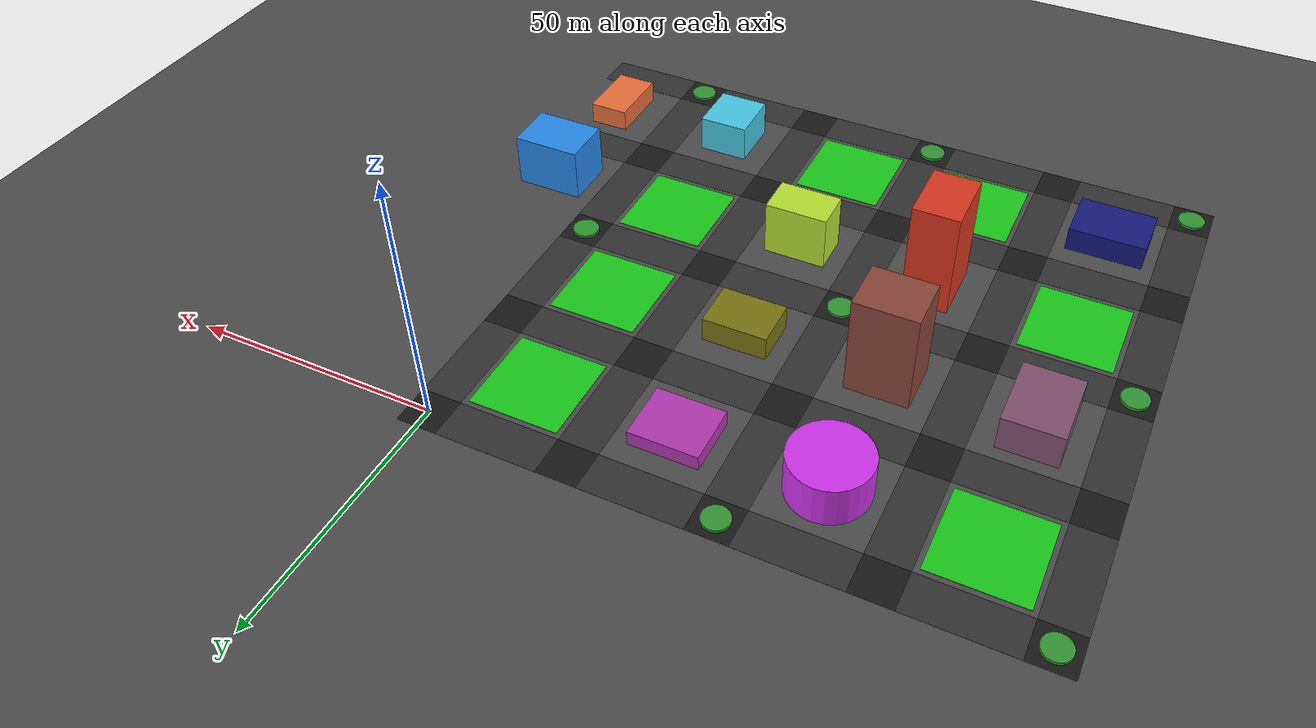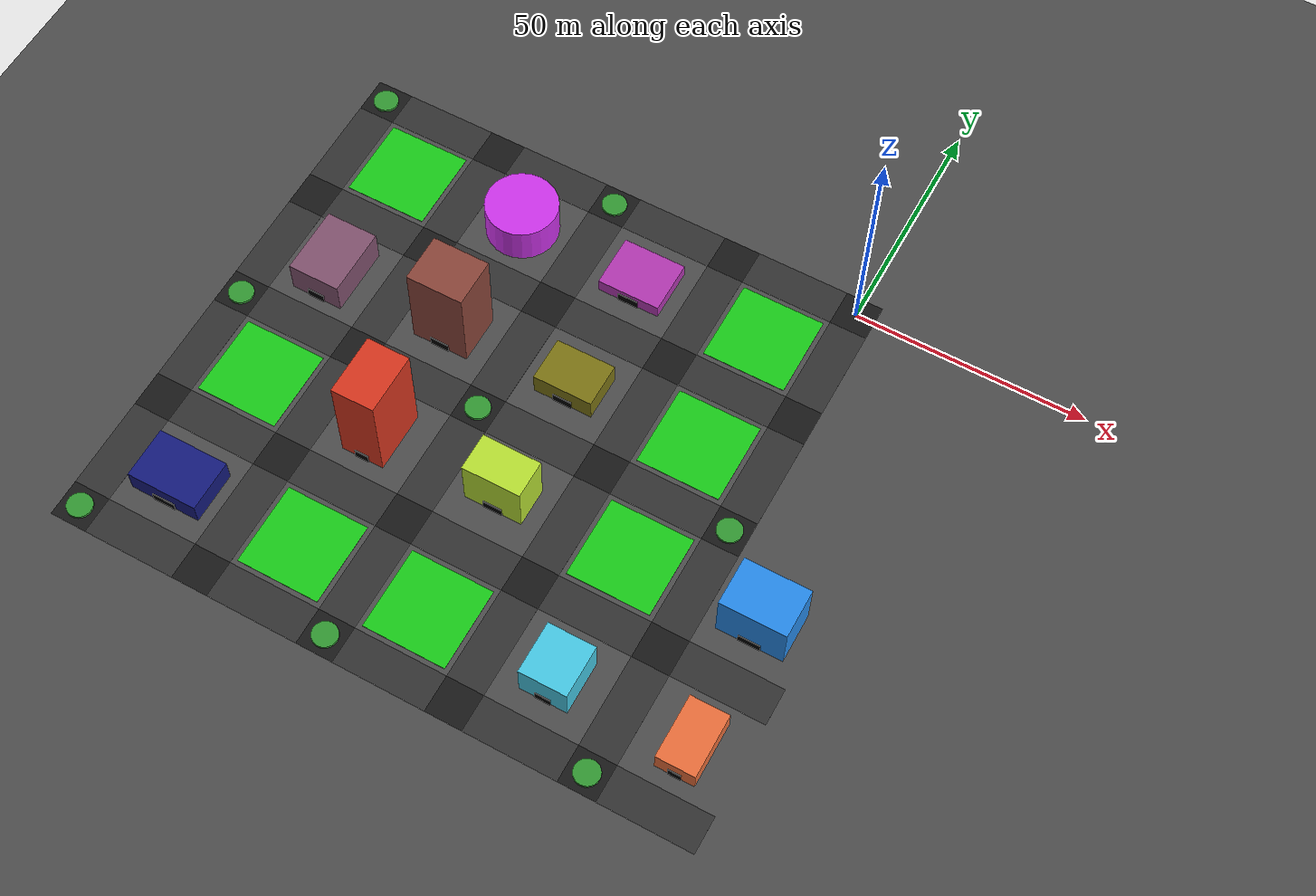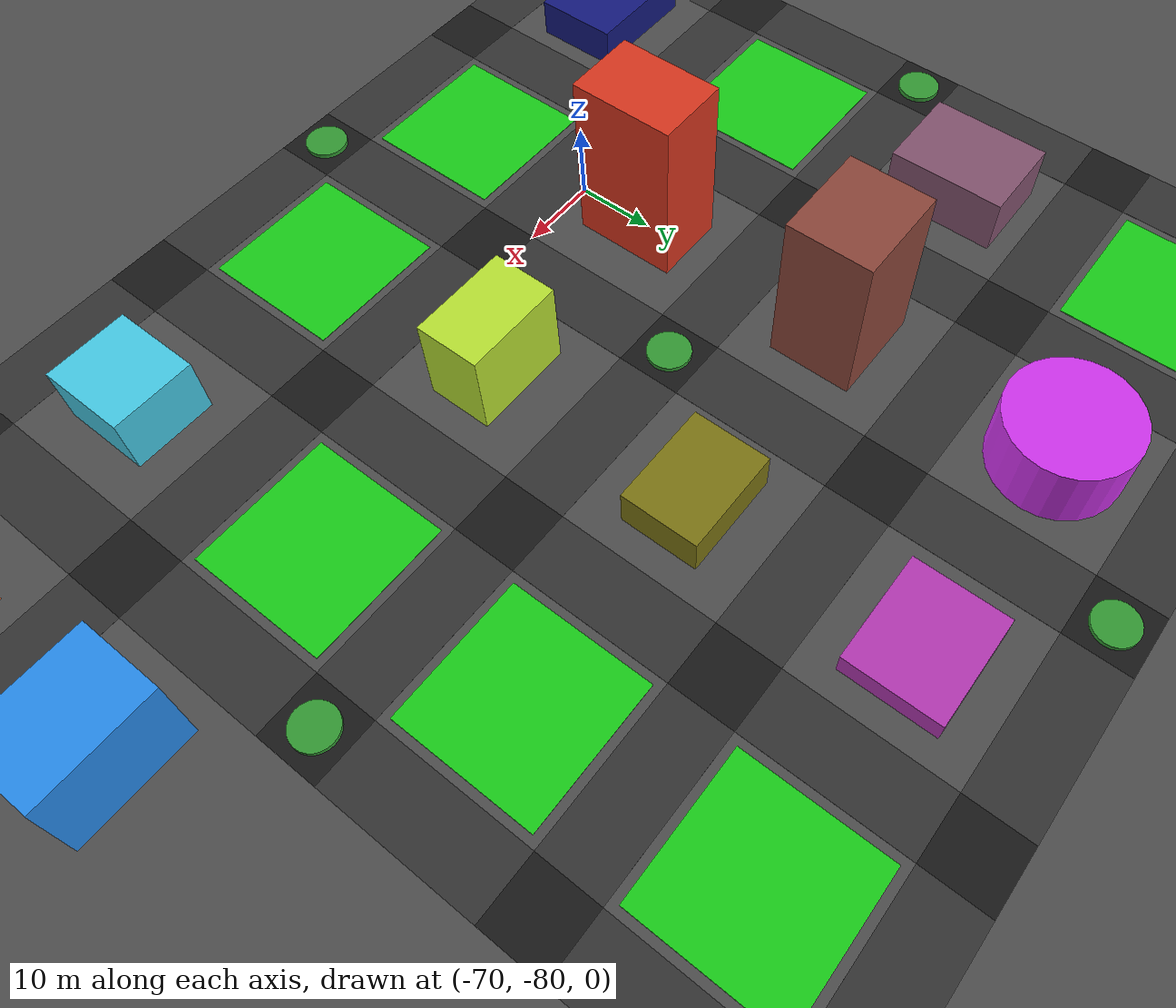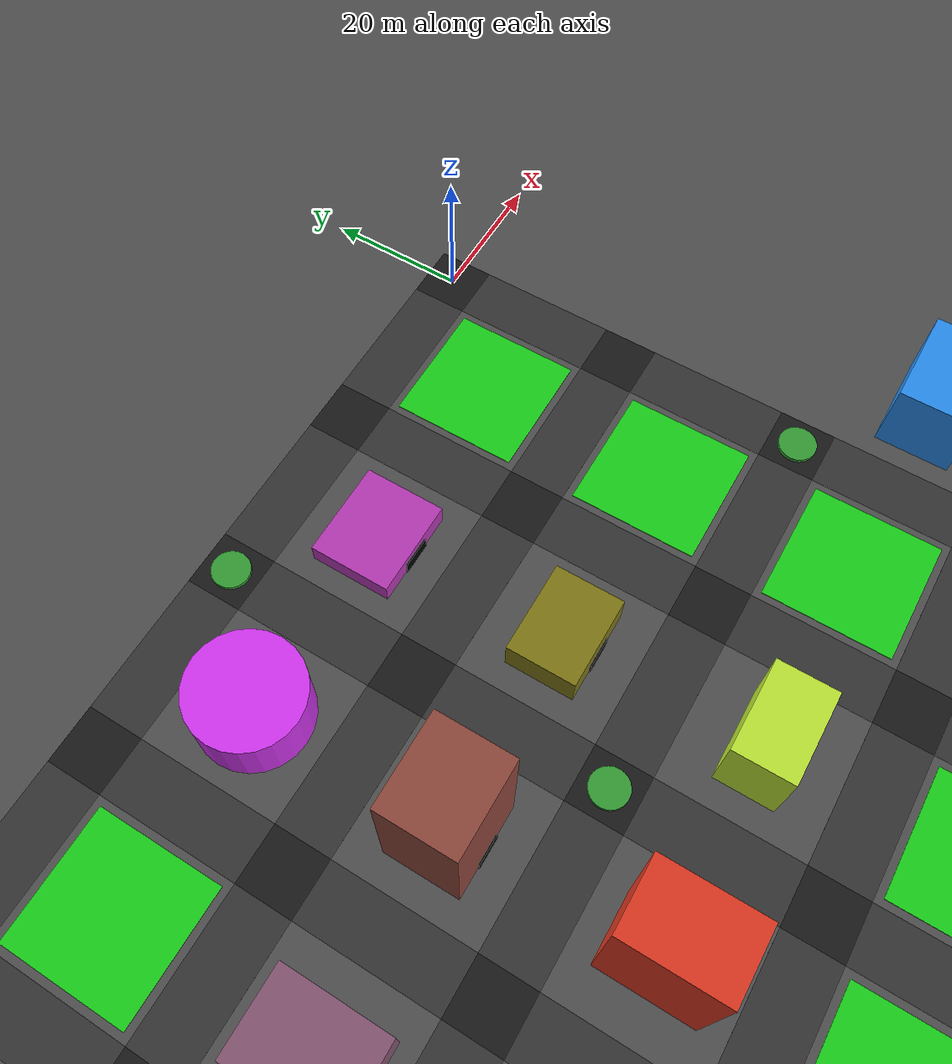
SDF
<sdf version="1.8">
 <world name="urban_city_rich">
  <model name="ground_plane">
   <static>true</static>
   <link name="link">
    <collision name="collision">
     <geometry><plane><normal>0 0 1</normal><size>200 200</size></plane></geometry>
     <surface><friction><ode><mu>100</mu><mu2>50</mu2></ode></friction></surface>
    </collision>
    <visual name="visual">
     <geometry><plane><normal>0 0 1</normal><size>200 200</size></plane></geometry>
     <material><ambient>0.3 0.3 0.3 1</ambient><diffuse>0.3 0.3 0.3 1</diffuse></material>
    </visual>
   </link>
  </model>
  <model name="road_inter_-4_-4">
   <static>true</static>
   <pose>-112.0 -112.0 0.01 0 0 0</pose>
   <link name="link">
    <visual name="vis">
     <geometry><box><size>8.0 8.0 0.02</size></box></geometry>
     <material><ambient>0.1 0.1 0.1 1</ambient><diffuse>0.1 0.1 0.1 1</diffuse></material>
    </visual>
   </link>
  </model>
  <model name="roundabout_-4_-4">
   <static>true</static>
   <pose>-112.0 -112.0 0.3 0 0 0</pose>
   <link name="link">
    <collision name="col">
     <geometry><cylinder><radius>2.6666666666666665</radius><length>0.6</length></cylinder></geometry>
    </collision>
    <visual name="vis">
     <geometry><cylinder><radius>2.6666666666666665</radius><length>0.6</length></cylinder></geometry>
     <material><ambient>0.2 0.6 0.2 1</ambient><diffuse>0.2 0.6 0.2 1</diffuse></material>
    </visual>
   </link>
  </model>
  <model name="road_h_-4_-4">
   <static>true</static>
   <pose>-98.0 -112.0 0.01 0 0 0</pose>
   <link name="link">
    <visual name="vis">
     <geometry><box><size>20.0 8.0 0.02</size></box></geometry>
     <material><ambient>0.2 0.2 0.2 1</ambient><diffuse>0.2 0.2 0.2 1</diffuse></material>
    </visual>
   </link>
  </model>
  <model name="road_v_-4_-4">
   <static>true</static>
   <pose>-112.0 -98.0 0.01 0 0 0</pose>
   <link name="link">
    <visual name="vis">
     <geometry><box><size>8.0 20.0 0.02</size></box></geometry>
     <material><ambient>0.2 0.2 0.2 1</ambient><diffuse>0.2 0.2 0.2 1</diffuse></material>
    </visual>
   </link>
  </model>
  <model name="bldg_0">
   <static>true</static>
   <pose>-98.0 -98.0 2.5235670317674987 0 0 0</pose>
   <link name="link">
    <collision name="col">
     <geometry><box><size>15.342661748203877 11.08600410563863 5.0471340635349975</size></box></geometry>
    </collision>
    <visual name="vis">
     <geometry><box><size>15.342661748203877 11.08600410563863 5.0471340635349975</size></box></geometry>
     <material>
      <ambient>0.07891768210494154 0.100371998829073 0.49105680813120545 1</ambient>
      <diffuse>0.07891768210494154 0.100371998829073 0.49105680813120545 1</diffuse>
     </material>
    </visual>
   </link>
  </model>
  <model name="door_0">
   <static>true</static>
   <pose>-98.0 -103.64300205281931 1.0 0 0 0</pose>
   <link name="link">
    <visual name="vis">
     <geometry><box><size>5.114220582734625 0.2 2.0</size></box></geometry>
     <material><ambient>0 0 0 1</ambient><diffuse>0 0 0 1</diffuse></material>
    </visual>
   </link>
  </model>
  <model name="road_inter_-4_-3">
   <static>true</static>
   <pose>-112.0 -84.0 0.01 0 0 0</pose>
   <link name="link">
    <visual name="vis">
     <geometry><box><size>8.0 8.0 0.02</size></box></geometry>
     <material><ambient>0.1 0.1 0.1 1</ambient><diffuse>0.1 0.1 0.1 1</diffuse></material>
    </visual>
   </link>
  </model>
  <model name="road_h_-4_-3">
   <static>true</static>
   <pose>-98.0 -84.0 0.01 0 0 0</pose>
   <link name="link">
    <visual name="vis">
     <geometry><box><size>20.0 8.0 0.02</size></box></geometry>
     <material><ambient>0.2 0.2 0.2 1</ambient><diffuse>0.2 0.2 0.2 1</diffuse></material>
    </visual>
   </link>
  </model>
  <model name="road_v_-4_-3">
   <static>true</static>
   <pose>-112.0 -70.0 0.01 0 0 0</pose>
   <link name="link">
    <visual name="vis">
     <geometry><box><size>8.0 20.0 0.02</size></box></geometry>
     <material><ambient>0.2 0.2 0.2 1</ambient><diffuse>0.2 0.2 0.2 1</diffuse></material>
    </visual>
   </link>
  </model>
  <model name="park_-4_-3">
   <static>true</static>
   <pose>-98.0 -70.0 0.05 0 0 0</pose>
   <link name="link">
    <visual name="vis">
     <geometry><box><size>18.0 18.0 0.1</size></box></geometry>
     <material><ambient>0.1 0.8 0.1 1</ambient><diffuse>0.1 0.8 0.1 1</diffuse></material>
    </visual>
   </link>
  </model>
  <model name="road_inter_-4_-2">
   <static>true</static>
   <pose>-112.0 -56.0 0.01 0 0 0</pose>
   <link name="link">
    <visual name="vis">
     <geometry><box><size>8.0 8.0 0.02</size></box></geometry>
     <material><ambient>0.1 0.1 0.1 1</ambient><diffuse>0.1 0.1 0.1 1</diffuse></material>
    </visual>
   </link>
  </model>
  <model name="roundabout_-4_-2">
   <static>true</static>
   <pose>-112.0 -56.0 0.3 0 0 0</pose>
   <link name="link">
    <collision name="col">
     <geometry><cylinder><radius>2.6666666666666665</radius><length>0.6</length></cylinder></geometry>
    </collision>
    <visual name="vis">
     <geometry><cylinder><radius>2.6666666666666665</radius><length>0.6</length></cylinder></geometry>
     <material><ambient>0.2 0.6 0.2 1</ambient><diffuse>0.2 0.6 0.2 1</diffuse></material>
    </visual>
   </link>
  </model>
  <model name="road_h_-4_-2">
   <static>true</static>
   <pose>-98.0 -56.0 0.01 0 0 0</pose>
   <link name="link">
    <visual name="vis">
     <geometry><box><size>20.0 8.0 0.02</size></box></geometry>
     <material><ambient>0.2 0.2 0.2 1</ambient><diffuse>0.2 0.2 0.2 1</diffuse></material>
    </visual>
   </link>
  </model>
  <model name="road_v_-4_-2">
   <static>true</static>
   <pose>-112.0 -42.0 0.01 0 0 0</pose>
   <link name="link">
    <visual name="vis">
     <geometry><box><size>8.0 20.0 0.02</size></box></geometry>
     <material><ambient>0.2 0.2 0.2 1</ambient><diffuse>0.2 0.2 0.2 1</diffuse></material>
    </visual>
   </link>
  </model>
  <model name="bldg_1">
   <static>true</static>
   <pose>-98.0 -42.0 3.6376901776272232 0 0 0</pose>
   <link name="link">
    <collision name="col">
     <geometry><box><size>11.35202361768915 14.776690094084369 7.2753803552544465</size></box></geometry>
    </collision>
    <visual name="vis">
     <geometry><box><size>11.35202361768915 14.776690094084369 7.2753803552544465</size></box></geometry>
     <material>
      <ambient>0.5092049025601565 0.32316817157173483 0.43274199991856177 1</ambient>
      <diffuse>0.5092049025601565 0.32316817157173483 0.43274199991856177 1</diffuse>
     </material>
    </visual>
   </link>
  </model>
  <model name="door_1">
   <static>true</static>
   <pose>-98.0 -49.48834504704219 1.0 0 0 0</pose>
   <link name="link">
    <visual name="vis">
     <geometry><box><size>3.78400787256305 0.2 2.0</size></box></geometry>
     <material><ambient>0 0 0 1</ambient><diffuse>0 0 0 1</diffuse></material>
    </visual>
   </link>
  </model>
  <model name="road_inter_-4_-1">
   <static>true</static>
   <pose>-112.0 -28.0 0.01 0 0 0</pose>
   <link name="link">
    <visual name="vis">
     <geometry><box><size>8.0 8.0 0.02</size></box></geometry>
     <material><ambient>0.1 0.1 0.1 1</ambient><diffuse>0.1 0.1 0.1 1</diffuse></material>
    </visual>
   </link>
  </model>
  <model name="road_h_-4_-1">
   <static>true</static>
   <pose>-98.0 -28.0 0.01 0 0 0</pose>
   <link name="link">
    <visual name="vis">
     <geometry><box><size>20.0 8.0 0.02</size></box></geometry>
     <material><ambient>0.2 0.2 0.2 1</ambient><diffuse>0.2 0.2 0.2 1</diffuse></material>
    </visual>
   </link>
  </model>
  <model name="road_v_-4_-1">
   <static>true</static>
   <pose>-112.0 -14.0 0.01 0 0 0</pose>
   <link name="link">
    <visual name="vis">
     <geometry><box><size>8.0 20.0 0.02</size></box></geometry>
     <material><ambient>0.2 0.2 0.2 1</ambient><diffuse>0.2 0.2 0.2 1</diffuse></material>
    </visual>
   </link>
  </model>
  <model name="park_-4_-1">
   <static>true</static>
   <pose>-98.0 -14.0 0.05 0 0 0</pose>
   <link name="link">
    <visual name="vis">
     <geometry><box><size>18.0 18.0 0.1</size></box></geometry>
     <material><ambient>0.1 0.8 0.1 1</ambient><diffuse>0.1 0.8 0.1 1</diffuse></material>
    </visual>
   </link>
  </model>
  <model name="road_inter_-4_0">
   <static>true</static>
   <pose>-112.0 0.0 0.01 0 0 0</pose>
   <link name="link">
    <visual name="vis">
     <geometry><box><size>8.0 8.0 0.02</size></box></geometry>
     <material><ambient>0.1 0.1 0.1 1</ambient><diffuse>0.1 0.1 0.1 1</diffuse></material>
    </visual>
   </link>
  </model>
  <model name="roundabout_-4_0">
   <static>true</static>
   <pose>-112.0 0.0 0.3 0 0 0</pose>
   <link name="link">
    <collision name="col">
     <geometry><cylinder><radius>2.6666666666666665</radius><length>0.6</length></cylinder></geometry>
    </collision>
    <visual name="vis">
     <geometry><cylinder><radius>2.6666666666666665</radius><length>0.6</length></cylinder></geometry>
     <material><ambient>0.2 0.6 0.2 1</ambient><diffuse>0.2 0.6 0.2 1</diffuse></material>
    </visual>
   </link>
  </model>
  <model name="road_h_-4_0">
   <static>true</static>
   <pose>-98.0 0.0 0.01 0 0 0</pose>
   <link name="link">
    <visual name="vis">
     <geometry><box><size>20.0 8.0 0.02</size></box></geometry>
     <material><ambient>0.2 0.2 0.2 1</ambient><diffuse>0.2 0.2 0.2 1</diffuse></material>
    </visual>
   </link>
  </model>
  <model name="road_inter_-3_-4">
   <static>true</static>
   <pose>-84.0 -112.0 0.01 0 0 0</pose>
   <link name="link">
    <visual name="vis">
     <geometry><box><size>8.0 8.0 0.02</size></box></geometry>
     <material><ambient>0.1 0.1 0.1 1</ambient><diffuse>0.1 0.1 0.1 1</diffuse></material>
    </visual>
   </link>
  </model>
  <model name="road_h_-3_-4">
   <static>true</static>
   <pose>-70.0 -112.0 0.01 0 0 0</pose>
   <link name="link">
    <visual name="vis">
     <geometry><box><size>20.0 8.0 0.02</size></box></geometry>
     <material><ambient>0.2 0.2 0.2 1</ambient><diffuse>0.2 0.2 0.2 1</diffuse></material>
    </visual>
   </link>
  </model>
  <model name="road_v_-3_-4">
   <static>true</static>
   <pose>-84.0 -98.0 0.01 0 0 0</pose>
   <link name="link">
    <visual name="vis">
     <geometry><box><size>8.0 20.0 0.02</size></box></geometry>
     <material><ambient>0.2 0.2 0.2 1</ambient><diffuse>0.2 0.2 0.2 1</diffuse></material>
    </visual>
   </link>
  </model>
  <model name="park_-3_-4">
   <static>true</static>
   <pose>-70.0 -98.0 0.05 0 0 0</pose>
   <link name="link">
    <visual name="vis">
     <geometry><box><size>18.0 18.0 0.1</size></box></geometry>
     <material><ambient>0.1 0.8 0.1 1</ambient><diffuse>0.1 0.8 0.1 1</diffuse></material>
    </visual>
   </link>
  </model>
  <model name="road_inter_-3_-3">
   <static>true</static>
   <pose>-84.0 -84.0 0.01 0 0 0</pose>
   <link name="link">
    <visual name="vis">
     <geometry><box><size>8.0 8.0 0.02</size></box></geometry>
     <material><ambient>0.1 0.1 0.1 1</ambient><diffuse>0.1 0.1 0.1 1</diffuse></material>
    </visual>
   </link>
  </model>
  <model name="road_h_-3_-3">
   <static>true</static>
   <pose>-70.0 -84.0 0.01 0 0 0</pose>
   <link name="link">
    <visual name="vis">
     <geometry><box><size>20.0 8.0 0.02</size></box></geometry>
     <material><ambient>0.2 0.2 0.2 1</ambient><diffuse>0.2 0.2 0.2 1</diffuse></material>
    </visual>
   </link>
  </model>
  <model name="road_v_-3_-3">
   <static>true</static>
   <pose>-84.0 -70.0 0.01 0 0 0</pose>
   <link name="link">
    <visual name="vis">
     <geometry><box><size>8.0 20.0 0.02</size></box></geometry>
     <material><ambient>0.2 0.2 0.2 1</ambient><diffuse>0.2 0.2 0.2 1</diffuse></material>
    </visual>
   </link>
  </model>
  <model name="bldg_6">
   <static>true</static>
   <pose>-70.0 -70.0 11.145302864680088 0 0 0</pose>
   <link name="link">
    <collision name="col">
     <geometry><box><size>9.249776720305364 13.105119866609332 22.290605729360177</size></box></geometry>
    </collision>
    <visual name="vis">
     <geometry><box><size>9.249776720305364 13.105119866609332 22.290605729360177</size></box></geometry>
     <material>
      <ambient>0.8486679505580024 0.21356448876894685 0.12262370836348857 1</ambient>
      <diffuse>0.8486679505580024 0.21356448876894685 0.12262370836348857 1</diffuse>
     </material>
    </visual>
   </link>
  </model>
  <model name="door_6">
   <static>true</static>
   <pose>-70.0 -76.65255993330466 1.0 0 0 0</pose>
   <link name="link">
    <visual name="vis">
     <geometry><box><size>3.083258906768455 0.2 2.0</size></box></geometry>
     <material><ambient>0 0 0 1</ambient><diffuse>0 0 0 1</diffuse></material>
    </visual>
   </link>
  </model>
  <model name="road_inter_-3_-2">
   <static>true</static>
   <pose>-84.0 -56.0 0.01 0 0 0</pose>
   <link name="link">
    <visual name="vis">
     <geometry><box><size>8.0 8.0 0.02</size></box></geometry>
     <material><ambient>0.1 0.1 0.1 1</ambient><diffuse>0.1 0.1 0.1 1</diffuse></material>
    </visual>
   </link>
  </model>
  <model name="road_h_-3_-2">
   <static>true</static>
   <pose>-70.0 -56.0 0.01 0 0 0</pose>
   <link name="link">
    <visual name="vis">
     <geometry><box><size>20.0 8.0 0.02</size></box></geometry>
     <material><ambient>0.2 0.2 0.2 1</ambient><diffuse>0.2 0.2 0.2 1</diffuse></material>
    </visual>
   </link>
  </model>
  <model name="road_v_-3_-2">
   <static>true</static>
   <pose>-84.0 -42.0 0.01 0 0 0</pose>
   <link name="link">
    <visual name="vis">
     <geometry><box><size>8.0 20.0 0.02</size></box></geometry>
     <material><ambient>0.2 0.2 0.2 1</ambient><diffuse>0.2 0.2 0.2 1</diffuse></material>
    </visual>
   </link>
  </model>
  <model name="bldg_7">
   <static>true</static>
   <pose>-70.0 -42.0 10.33584450808003 0 0 0</pose>
   <link name="link">
    <collision name="col">
     <geometry><box><size>12.347266834379655 10.477315987206403 20.67168901616006</size></box></geometry>
    </collision>
    <visual name="vis">
     <geometry><box><size>12.347266834379655 10.477315987206403 20.67168901616006</size></box></geometry>
     <material>
      <ambient>0.5452253943904294 0.27323704681909844 0.22826414803682094 1</ambient>
      <diffuse>0.5452253943904294 0.27323704681909844 0.22826414803682094 1</diffuse>
     </material>
    </visual>
   </link>
  </model>
  <model name="door_7">
   <static>true</static>
   <pose>-70.0 -47.3386579936032 1.0 0 0 0</pose>
   <link name="link">
    <visual name="vis">
     <geometry><box><size>4.1157556114598846 0.2 2.0</size></box></geometry>
     <material><ambient>0 0 0 1</ambient><diffuse>0 0 0 1</diffuse></material>
    </visual>
   </link>
  </model>
  <model name="road_inter_-3_-1">
   <static>true</static>
   <pose>-84.0 -28.0 0.01 0 0 0</pose>
   <link name="link">
    <visual name="vis">
     <geometry><box><size>8.0 8.0 0.02</size></box></geometry>
     <material><ambient>0.1 0.1 0.1 1</ambient><diffuse>0.1 0.1 0.1 1</diffuse></material>
    </visual>
   </link>
  </model>
  <model name="road_h_-3_-1">
   <static>true</static>
   <pose>-70.0 -28.0 0.01 0 0 0</pose>
   <link name="link">
    <visual name="vis">
     <geometry><box><size>20.0 8.0 0.02</size></box></geometry>
     <material><ambient>0.2 0.2 0.2 1</ambient><diffuse>0.2 0.2 0.2 1</diffuse></material>
    </visual>
   </link>
  </model>
  <model name="road_v_-3_-1">
   <static>true</static>
   <pose>-84.0 -14.0 0.01 0 0 0</pose>
   <link name="link">
    <visual name="vis">
     <geometry><box><size>8.0 20.0 0.02</size></box></geometry>
     <material><ambient>0.2 0.2 0.2 1</ambient><diffuse>0.2 0.2 0.2 1</diffuse></material>
    </visual>
   </link>
  </model>
  <model name="bldg_8">
   <static>true</static>
   <pose>-70.0 -14.0 4.16093976846412 0 0 0</pose>
   <link name="link">
    <collision name="col">
     <geometry><cylinder><radius>7.724120574102244</radius><length>8.32187953692824</length></cylinder></geometry>
    </collision>
    <visual name="vis">
     <geometry><cylinder><radius>7.724120574102244</radius><length>8.32187953692824</length></cylinder></geometry>
     <material>
      <ambient>0.8154843360258764 0.20335821501575657 0.9309179945168319 1</ambient>
      <diffuse>0.8154843360258764 0.20335821501575657 0.9309179945168319 1</diffuse>
     </material>
    </visual>
   </link>
  </model>
  <model name="door_8">
   <static>true</static>
   <pose>-70.0 -19.347105833627378 1.0 0 0 0</pose>
   <link name="link">
    <visual name="vis">
     <geometry><box><size>5.149413716068163 0.2 2.0</size></box></geometry>
     <material><ambient>0 0 0 1</ambient><diffuse>0 0 0 1</diffuse></material>
    </visual>
   </link>
  </model>
  <model name="road_inter_-3_0">
   <static>true</static>
   <pose>-84.0 0.0 0.01 0 0 0</pose>
   <link name="link">
    <visual name="vis">
     <geometry><box><size>8.0 8.0 0.02</size></box></geometry>
     <material><ambient>0.1 0.1 0.1 1</ambient><diffuse>0.1 0.1 0.1 1</diffuse></material>
    </visual>
   </link>
  </model>
  <model name="road_h_-3_0">
   <static>true</static>
   <pose>-70.0 0.0 0.01 0 0 0</pose>
   <link name="link">
    <visual name="vis">
     <geometry><box><size>20.0 8.0 0.02</size></box></geometry>
     <material><ambient>0.2 0.2 0.2 1</ambient><diffuse>0.2 0.2 0.2 1</diffuse></material>
    </visual>
   </link>
  </model>
  <model name="road_inter_-2_-4">
   <static>true</static>
   <pose>-56.0 -112.0 0.01 0 0 0</pose>
   <link name="link">
    <visual name="vis">
     <geometry><box><size>8.0 8.0 0.02</size></box></geometry>
     <material><ambient>0.1 0.1 0.1 1</ambient><diffuse>0.1 0.1 0.1 1</diffuse></material>
    </visual>
   </link>
  </model>
  <model name="roundabout_-2_-4">
   <static>true</static>
   <pose>-56.0 -112.0 0.3 0 0 0</pose>
   <link name="link">
    <collision name="col">
     <geometry><cylinder><radius>2.6666666666666665</radius><length>0.6</length></cylinder></geometry>
    </collision>
    <visual name="vis">
     <geometry><cylinder><radius>2.6666666666666665</radius><length>0.6</length></cylinder></geometry>
     <material><ambient>0.2 0.6 0.2 1</ambient><diffuse>0.2 0.6 0.2 1</diffuse></material>
    </visual>
   </link>
  </model>
  <model name="road_h_-2_-4">
   <static>true</static>
   <pose>-42.0 -112.0 0.01 0 0 0</pose>
   <link name="link">
    <visual name="vis">
     <geometry><box><size>20.0 8.0 0.02</size></box></geometry>
     <material><ambient>0.2 0.2 0.2 1</ambient><diffuse>0.2 0.2 0.2 1</diffuse></material>
    </visual>
   </link>
  </model>
  <model name="road_v_-2_-4">
   <static>true</static>
   <pose>-56.0 -98.0 0.01 0 0 0</pose>
   <link name="link">
    <visual name="vis">
     <geometry><box><size>8.0 20.0 0.02</size></box></geometry>
     <material><ambient>0.2 0.2 0.2 1</ambient><diffuse>0.2 0.2 0.2 1</diffuse></material>
    </visual>
   </link>
  </model>
  <model name="park_-2_-4">
   <static>true</static>
   <pose>-42.0 -98.0 0.05 0 0 0</pose>
   <link name="link">
    <visual name="vis">
     <geometry><box><size>18.0 18.0 0.1</size></box></geometry>
     <material><ambient>0.1 0.8 0.1 1</ambient><diffuse>0.1 0.8 0.1 1</diffuse></material>
    </visual>
   </link>
  </model>
  <model name="road_inter_-2_-3">
   <static>true</static>
   <pose>-56.0 -84.0 0.01 0 0 0</pose>
   <link name="link">
    <visual name="vis">
     <geometry><box><size>8.0 8.0 0.02</size></box></geometry>
     <material><ambient>0.1 0.1 0.1 1</ambient><diffuse>0.1 0.1 0.1 1</diffuse></material>
    </visual>
   </link>
  </model>
  <model name="road_h_-2_-3">
   <static>true</static>
   <pose>-42.0 -84.0 0.01 0 0 0</pose>
   <link name="link">
    <visual name="vis">
     <geometry><box><size>20.0 8.0 0.02</size></box></geometry>
     <material><ambient>0.2 0.2 0.2 1</ambient><diffuse>0.2 0.2 0.2 1</diffuse></material>
    </visual>
   </link>
  </model>
  <model name="road_v_-2_-3">
   <static>true</static>
   <pose>-56.0 -70.0 0.01 0 0 0</pose>
   <link name="link">
    <visual name="vis">
     <geometry><box><size>8.0 20.0 0.02</size></box></geometry>
     <material><ambient>0.2 0.2 0.2 1</ambient><diffuse>0.2 0.2 0.2 1</diffuse></material>
    </visual>
   </link>
  </model>
  <model name="bldg_12">
   <static>true</static>
   <pose>-42.0 -70.0 5.734184694096465 0 0 0</pose>
   <link name="link">
    <collision name="col">
     <geometry><box><size>12.679352574609744 8.170057510644643 11.46836938819293</size></box></geometry>
    </collision>
    <visual name="vis">
     <geometry><box><size>12.679352574609744 8.170057510644643 11.46836938819293</size></box></geometry>
     <material>
      <ambient>0.724466864392436 0.8841149506035106 0.2005147474207506 1</ambient>
      <diffuse>0.724466864392436 0.8841149506035106 0.2005147474207506 1</diffuse>
     </material>
    </visual>
   </link>
  </model>
  <model name="door_12">
   <static>true</static>
   <pose>-42.0 -74.18502875532232 1.0 0 0 0</pose>
   <link name="link">
    <visual name="vis">
     <geometry><box><size>4.226450858203248 0.2 2.0</size></box></geometry>
     <material><ambient>0 0 0 1</ambient><diffuse>0 0 0 1</diffuse></material>
    </visual>
   </link>
  </model>
  <model name="road_inter_-2_-2">
   <static>true</static>
   <pose>-56.0 -56.0 0.01 0 0 0</pose>
   <link name="link">
    <visual name="vis">
     <geometry><box><size>8.0 8.0 0.02</size></box></geometry>
     <material><ambient>0.1 0.1 0.1 1</ambient><diffuse>0.1 0.1 0.1 1</diffuse></material>
    </visual>
   </link>
  </model>
  <model name="roundabout_-2_-2">
   <static>true</static>
   <pose>-56.0 -56.0 0.3 0 0 0</pose>
   <link name="link">
    <collision name="col">
     <geometry><cylinder><radius>2.6666666666666665</radius><length>0.6</length></cylinder></geometry>
    </collision>
    <visual name="vis">
     <geometry><cylinder><radius>2.6666666666666665</radius><length>0.6</length></cylinder></geometry>
     <material><ambient>0.2 0.6 0.2 1</ambient><diffuse>0.2 0.6 0.2 1</diffuse></material>
    </visual>
   </link>
  </model>
  <model name="road_h_-2_-2">
   <static>true</static>
   <pose>-42.0 -56.0 0.01 0 0 0</pose>
   <link name="link">
    <visual name="vis">
     <geometry><box><size>20.0 8.0 0.02</size></box></geometry>
     <material><ambient>0.2 0.2 0.2 1</ambient><diffuse>0.2 0.2 0.2 1</diffuse></material>
    </visual>
   </link>
  </model>
  <model name="road_v_-2_-2">
   <static>true</static>
   <pose>-56.0 -42.0 0.01 0 0 0</pose>
   <link name="link">
    <visual name="vis">
     <geometry><box><size>8.0 20.0 0.02</size></box></geometry>
     <material><ambient>0.2 0.2 0.2 1</ambient><diffuse>0.2 0.2 0.2 1</diffuse></material>
    </visual>
   </link>
  </model>
  <model name="bldg_13">
   <static>true</static>
   <pose>-42.0 -42.0 2.522974517584019 0 0 0</pose>
   <link name="link">
    <collision name="col">
     <geometry><box><size>12.931677133729247 9.709780513660842 5.045949035168038</size></box></geometry>
    </collision>
    <visual name="vis">
     <geometry><box><size>12.931677133729247 9.709780513660842 5.045949035168038</size></box></geometry>
     <material>
      <ambient>0.48810979955961264 0.45837308282455147 0.07947602669510367 1</ambient>
      <diffuse>0.48810979955961264 0.45837308282455147 0.07947602669510367 1</diffuse>
     </material>
    </visual>
   </link>
  </model>
  <model name="door_13">
   <static>true</static>
   <pose>-42.0 -46.954890256830424 1.0 0 0 0</pose>
   <link name="link">
    <visual name="vis">
     <geometry><box><size>4.310559044576416 0.2 2.0</size></box></geometry>
     <material><ambient>0 0 0 1</ambient><diffuse>0 0 0 1</diffuse></material>
    </visual>
   </link>
  </model>
  <model name="road_inter_-2_-1">
   <static>true</static>
   <pose>-56.0 -28.0 0.01 0 0 0</pose>
   <link name="link">
    <visual name="vis">
     <geometry><box><size>8.0 8.0 0.02</size></box></geometry>
     <material><ambient>0.1 0.1 0.1 1</ambient><diffuse>0.1 0.1 0.1 1</diffuse></material>
    </visual>
   </link>
  </model>
  <model name="road_h_-2_-1">
   <static>true</static>
   <pose>-42.0 -28.0 0.01 0 0 0</pose>
   <link name="link">
    <visual name="vis">
     <geometry><box><size>20.0 8.0 0.02</size></box></geometry>
     <material><ambient>0.2 0.2 0.2 1</ambient><diffuse>0.2 0.2 0.2 1</diffuse></material>
    </visual>
   </link>
  </model>
  <model name="road_v_-2_-1">
   <static>true</static>
   <pose>-56.0 -14.0 0.01 0 0 0</pose>
   <link name="link">
    <visual name="vis">
     <geometry><box><size>8.0 20.0 0.02</size></box></geometry>
     <material><ambient>0.2 0.2 0.2 1</ambient><diffuse>0.2 0.2 0.2 1</diffuse></material>
    </visual>
   </link>
  </model>
  <model name="bldg_14">
   <static>true</static>
   <pose>-42.0 -14.0 1.5267114841007532 0 0 0</pose>
   <link name="link">
    <collision name="col">
     <geometry><box><size>13.632911136492433 11.555225343470225 3.0534229682015064</size></box></geometry>
    </collision>
    <visual name="vis">
     <geometry><box><size>13.632911136492433 11.555225343470225 3.0534229682015064</size></box></geometry>
     <material>
      <ambient>0.7042233576448294 0.21905984064392303 0.6998118177265623 1</ambient>
      <diffuse>0.7042233576448294 0.21905984064392303 0.6998118177265623 1</diffuse>
     </material>
    </visual>
   </link>
  </model>
  <model name="door_14">
   <static>true</static>
   <pose>-42.0 -19.877612671735115 1.0 0 0 0</pose>
   <link name="link">
    <visual name="vis">
     <geometry><box><size>4.544303712164145 0.2 2.0</size></box></geometry>
     <material><ambient>0 0 0 1</ambient><diffuse>0 0 0 1</diffuse></material>
    </visual>
   </link>
  </model>
  <model name="road_inter_-2_0">
   <static>true</static>
   <pose>-56.0 0.0 0.01 0 0 0</pose>
   <link name="link">
    <visual name="vis">
     <geometry><box><size>8.0 8.0 0.02</size></box></geometry>
     <material><ambient>0.1 0.1 0.1 1</ambient><diffuse>0.1 0.1 0.1 1</diffuse></material>
    </visual>
   </link>
  </model>
  <model name="roundabout_-2_0">
   <static>true</static>
   <pose>-56.0 0.0 0.3 0 0 0</pose>
   <link name="link">
    <collision name="col">
     <geometry><cylinder><radius>2.6666666666666665</radius><length>0.6</length></cylinder></geometry>
    </collision>
    <visual name="vis">
     <geometry><cylinder><radius>2.6666666666666665</radius><length>0.6</length></cylinder></geometry>
     <material><ambient>0.2 0.6 0.2 1</ambient><diffuse>0.2 0.6 0.2 1</diffuse></material>
    </visual>
   </link>
  </model>
  <model name="road_h_-2_0">
   <static>true</static>
   <pose>-42.0 0.0 0.01 0 0 0</pose>
   <link name="link">
    <visual name="vis">
     <geometry><box><size>20.0 8.0 0.02</size></box></geometry>
     <material><ambient>0.2 0.2 0.2 1</ambient><diffuse>0.2 0.2 0.2 1</diffuse></material>
    </visual>
   </link>
  </model>
  <model name="road_inter_-1_-4">
   <static>true</static>
   <pose>-28.0 -112.0 0.01 0 0 0</pose>
   <link name="link">
    <visual name="vis">
     <geometry><box><size>8.0 8.0 0.02</size></box></geometry>
     <material><ambient>0.1 0.1 0.1 1</ambient><diffuse>0.1 0.1 0.1 1</diffuse></material>
    </visual>
   </link>
  </model>
  <model name="road_h_-1_-4">
   <static>true</static>
   <pose>-14.0 -112.0 0.01 0 0 0</pose>
   <link name="link">
    <visual name="vis">
     <geometry><box><size>20.0 8.0 0.02</size></box></geometry>
     <material><ambient>0.2 0.2 0.2 1</ambient><diffuse>0.2 0.2 0.2 1</diffuse></material>
    </visual>
   </link>
  </model>
  <model name="road_v_-1_-4">
   <static>true</static>
   <pose>-28.0 -98.0 0.01 0 0 0</pose>
   <link name="link">
    <visual name="vis">
     <geometry><box><size>8.0 20.0 0.02</size></box></geometry>
     <material><ambient>0.2 0.2 0.2 1</ambient><diffuse>0.2 0.2 0.2 1</diffuse></material>
    </visual>
   </link>
  </model>
  <model name="bldg_18">
   <static>true</static>
   <pose>-14.0 -98.0 3.8560939050084353 0 0 0</pose>
   <link name="link">
    <collision name="col">
     <geometry><box><size>10.253962400846973 11.17725089507213 7.712187810016871</size></box></geometry>
    </collision>
    <visual name="vis">
     <geometry><box><size>10.253962400846973 11.17725089507213 7.712187810016871</size></box></geometry>
     <material>
      <ambient>0.2759380565349887 0.791651058803078 0.898773091240485 1</ambient>
      <diffuse>0.2759380565349887 0.791651058803078 0.898773091240485 1</diffuse>
     </material>
    </visual>
   </link>
  </model>
  <model name="door_18">
   <static>true</static>
   <pose>-14.0 -103.68862544753605 1.0 0 0 0</pose>
   <link name="link">
    <visual name="vis">
     <geometry><box><size>3.417987466948991 0.2 2.0</size></box></geometry>
     <material><ambient>0 0 0 1</ambient><diffuse>0 0 0 1</diffuse></material>
    </visual>
   </link>
  </model>
  <model name="road_inter_-1_-3">
   <static>true</static>
   <pose>-28.0 -84.0 0.01 0 0 0</pose>
   <link name="link">
    <visual name="vis">
     <geometry><box><size>8.0 8.0 0.02</size></box></geometry>
     <material><ambient>0.1 0.1 0.1 1</ambient><diffuse>0.1 0.1 0.1 1</diffuse></material>
    </visual>
   </link>
  </model>
  <model name="road_h_-1_-3">
   <static>true</static>
   <pose>-14.0 -84.0 0.01 0 0 0</pose>
   <link name="link">
    <visual name="vis">
     <geometry><box><size>20.0 8.0 0.02</size></box></geometry>
     <material><ambient>0.2 0.2 0.2 1</ambient><diffuse>0.2 0.2 0.2 1</diffuse></material>
    </visual>
   </link>
  </model>
  <model name="road_v_-1_-3">
   <static>true</static>
   <pose>-28.0 -70.0 0.01 0 0 0</pose>
   <link name="link">
    <visual name="vis">
     <geometry><box><size>8.0 20.0 0.02</size></box></geometry>
     <material><ambient>0.2 0.2 0.2 1</ambient><diffuse>0.2 0.2 0.2 1</diffuse></material>
    </visual>
   </link>
  </model>
  <model name="park_-1_-3">
   <static>true</static>
   <pose>-14.0 -70.0 0.05 0 0 0</pose>
   <link name="link">
    <visual name="vis">
     <geometry><box><size>18.0 18.0 0.1</size></box></geometry>
     <material><ambient>0.1 0.8 0.1 1</ambient><diffuse>0.1 0.8 0.1 1</diffuse></material>
    </visual>
   </link>
  </model>
  <model name="road_inter_-1_-2">
   <static>true</static>
   <pose>-28.0 -56.0 0.01 0 0 0</pose>
   <link name="link">
    <visual name="vis">
     <geometry><box><size>8.0 8.0 0.02</size></box></geometry>
     <material><ambient>0.1 0.1 0.1 1</ambient><diffuse>0.1 0.1 0.1 1</diffuse></material>
    </visual>
   </link>
  </model>
  <model name="road_h_-1_-2">
   <static>true</static>
   <pose>-14.0 -56.0 0.01 0 0 0</pose>
   <link name="link">
    <visual name="vis">
     <geometry><box><size>20.0 8.0 0.02</size></box></geometry>
     <material><ambient>0.2 0.2 0.2 1</ambient><diffuse>0.2 0.2 0.2 1</diffuse></material>
    </visual>
   </link>
  </model>
  <model name="road_v_-1_-2">
   <static>true</static>
   <pose>-28.0 -42.0 0.01 0 0 0</pose>
   <link name="link">
    <visual name="vis">
     <geometry><box><size>8.0 20.0 0.02</size></box></geometry>
     <material><ambient>0.2 0.2 0.2 1</ambient><diffuse>0.2 0.2 0.2 1</diffuse></material>
    </visual>
   </link>
  </model>
  <model name="park_-1_-2">
   <static>true</static>
   <pose>-14.0 -42.0 0.05 0 0 0</pose>
   <link name="link">
    <visual name="vis">
     <geometry><box><size>18.0 18.0 0.1</size></box></geometry>
     <material><ambient>0.1 0.8 0.1 1</ambient><diffuse>0.1 0.8 0.1 1</diffuse></material>
    </visual>
   </link>
  </model>
  <model name="road_inter_-1_-1">
   <static>true</static>
   <pose>-28.0 -28.0 0.01 0 0 0</pose>
   <link name="link">
    <visual name="vis">
     <geometry><box><size>8.0 8.0 0.02</size></box></geometry>
     <material><ambient>0.1 0.1 0.1 1</ambient><diffuse>0.1 0.1 0.1 1</diffuse></material>
    </visual>
   </link>
  </model>
  <model name="road_h_-1_-1">
   <static>true</static>
   <pose>-14.0 -28.0 0.01 0 0 0</pose>
   <link name="link">
    <visual name="vis">
     <geometry><box><size>20.0 8.0 0.02</size></box></geometry>
     <material><ambient>0.2 0.2 0.2 1</ambient><diffuse>0.2 0.2 0.2 1</diffuse></material>
    </visual>
   </link>
  </model>
  <model name="road_v_-1_-1">
   <static>true</static>
   <pose>-28.0 -14.0 0.01 0 0 0</pose>
   <link name="link">
    <visual name="vis">
     <geometry><box><size>8.0 20.0 0.02</size></box></geometry>
     <material><ambient>0.2 0.2 0.2 1</ambient><diffuse>0.2 0.2 0.2 1</diffuse></material>
    </visual>
   </link>
  </model>
  <model name="park_-1_-1">
   <static>true</static>
   <pose>-14.0 -14.0 0.05 0 0 0</pose>
   <link name="link">
    <visual name="vis">
     <geometry><box><size>18.0 18.0 0.1</size></box></geometry>
     <material><ambient>0.1 0.8 0.1 1</ambient><diffuse>0.1 0.8 0.1 1</diffuse></material>
    </visual>
   </link>
  </model>
  <model name="road_inter_-1_0">
   <static>true</static>
   <pose>-28.0 0.0 0.01 0 0 0</pose>
   <link name="link">
    <visual name="vis">
     <geometry><box><size>8.0 8.0 0.02</size></box></geometry>
     <material><ambient>0.1 0.1 0.1 1</ambient><diffuse>0.1 0.1 0.1 1</diffuse></material>
    </visual>
   </link>
  </model>
  <model name="road_h_-1_0">
   <static>true</static>
   <pose>-14.0 0.0 0.01 0 0 0</pose>
   <link name="link">
    <visual name="vis">
     <geometry><box><size>20.0 8.0 0.02</size></box></geometry>
     <material><ambient>0.2 0.2 0.2 1</ambient><diffuse>0.2 0.2 0.2 1</diffuse></material>
    </visual>
   </link>
  </model>
  <model name="road_inter_0_-4">
   <static>true</static>
   <pose>0.0 -112.0 0.01 0 0 0</pose>
   <link name="link">
    <visual name="vis">
     <geometry><box><size>8.0 8.0 0.02</size></box></geometry>
     <material><ambient>0.1 0.1 0.1 1</ambient><diffuse>0.1 0.1 0.1 1</diffuse></material>
    </visual>
   </link>
  </model>
  <model name="roundabout_0_-4">
   <static>true</static>
   <pose>0.0 -112.0 0.3 0 0 0</pose>
   <link name="link">
    <collision name="col">
     <geometry><cylinder><radius>2.6666666666666665</radius><length>0.6</length></cylinder></geometry>
    </collision>
    <visual name="vis">
     <geometry><cylinder><radius>2.6666666666666665</radius><length>0.6</length></cylinder></geometry>
     <material><ambient>0.2 0.6 0.2 1</ambient><diffuse>0.2 0.6 0.2 1</diffuse></material>
    </visual>
   </link>
  </model>
  <model name="road_h_0_-4">
   <static>true</static>
   <pose>14.0 -112.0 0.01 0 0 0</pose>
   <link name="link">
    <visual name="vis">
     <geometry><box><size>20.0 8.0 0.02</size></box></geometry>
     <material><ambient>0.2 0.2 0.2 1</ambient><diffuse>0.2 0.2 0.2 1</diffuse></material>
    </visual>
   </link>
  </model>
  <model name="road_v_0_-4">
   <static>true</static>
   <pose>0.0 -98.0 0.01 0 0 0</pose>
   <link name="link">
    <visual name="vis">
     <geometry><box><size>8.0 20.0 0.02</size></box></geometry>
     <material><ambient>0.2 0.2 0.2 1</ambient><diffuse>0.2 0.2 0.2 1</diffuse></material>
    </visual>
   </link>
  </model>
  <model name="bldg_24">
   <static>true</static>
   <pose>14.0 -98.0 2.289148733467205 0 0 0</pose>
   <link name="link">
    <collision name="col">
     <geometry><box><size>8.299808257160707 13.613628105386017 4.57829746693441</size></box></geometry>
    </collision>
    <visual name="vis">
     <geometry><box><size>8.299808257160707 13.613628105386017 4.57829746693441</size></box></geometry>
     <material>
      <ambient>0.9259214915894293 0.43607325133066543 0.2295530499398044 1</ambient>
      <diffuse>0.9259214915894293 0.43607325133066543 0.2295530499398044 1</diffuse>
     </material>
    </visual>
   </link>
  </model>
  <model name="door_24">
   <static>true</static>
   <pose>14.0 -104.90681405269301 1.0 0 0 0</pose>
   <link name="link">
    <visual name="vis">
     <geometry><box><size>2.7666027523869023 0.2 2.0</size></box></geometry>
     <material><ambient>0 0 0 1</ambient><diffuse>0 0 0 1</diffuse></material>
    </visual>
   </link>
  </model>
  <model name="road_inter_0_-3">
   <static>true</static>
   <pose>0.0 -84.0 0.01 0 0 0</pose>
   <link name="link">
    <visual name="vis">
     <geometry><box><size>8.0 8.0 0.02</size></box></geometry>
     <material><ambient>0.1 0.1 0.1 1</ambient><diffuse>0.1 0.1 0.1 1</diffuse></material>
    </visual>
   </link>
  </model>
  <model name="road_h_0_-3">
   <static>true</static>
   <pose>14.0 -84.0 0.01 0 0 0</pose>
   <link name="link">
    <visual name="vis">
     <geometry><box><size>20.0 8.0 0.02</size></box></geometry>
     <material><ambient>0.2 0.2 0.2 1</ambient><diffuse>0.2 0.2 0.2 1</diffuse></material>
    </visual>
   </link>
  </model>
  <model name="road_v_0_-3">
   <static>true</static>
   <pose>0.0 -70.0 0.01 0 0 0</pose>
   <link name="link">
    <visual name="vis">
     <geometry><box><size>8.0 20.0 0.02</size></box></geometry>
     <material><ambient>0.2 0.2 0.2 1</ambient><diffuse>0.2 0.2 0.2 1</diffuse></material>
    </visual>
   </link>
  </model>
  <model name="bldg_25">
   <static>true</static>
   <pose>14.0 -70.0 5.541431966501862 0 0 0</pose>
   <link name="link">
    <collision name="col">
     <geometry><box><size>14.127245294799723 10.503995649685429 11.082863933003724</size></box></geometry>
    </collision>
    <visual name="vis">
     <geometry><box><size>14.127245294799723 10.503995649685429 11.082863933003724</size></box></geometry>
     <material>
      <ambient>0.1553958568119016 0.546708557369807 0.9225921506838356 1</ambient>
      <diffuse>0.1553958568119016 0.546708557369807 0.9225921506838356 1</diffuse>
     </material>
    </visual>
   </link>
  </model>
  <model name="door_25">
   <static>true</static>
   <pose>14.0 -75.35199782484271 1.0 0 0 0</pose>
   <link name="link">
    <visual name="vis">
     <geometry><box><size>4.709081764933241 0.2 2.0</size></box></geometry>
     <material><ambient>0 0 0 1</ambient><diffuse>0 0 0 1</diffuse></material>
    </visual>
   </link>
  </model>
  <model name="road_inter_0_-2">
   <static>true</static>
   <pose>0.0 -56.0 0.01 0 0 0</pose>
   <link name="link">
    <visual name="vis">
     <geometry><box><size>8.0 8.0 0.02</size></box></geometry>
     <material><ambient>0.1 0.1 0.1 1</ambient><diffuse>0.1 0.1 0.1 1</diffuse></material>
    </visual>
   </link>
  </model>
  <model name="roundabout_0_-2">
   <static>true</static>
   <pose>0.0 -56.0 0.3 0 0 0</pose>
   <link name="link">
    <collision name="col">
     <geometry><cylinder><radius>2.6666666666666665</radius><length>0.6</length></cylinder></geometry>
    </collision>
    <visual name="vis">
     <geometry><cylinder><radius>2.6666666666666665</radius><length>0.6</length></cylinder></geometry>
     <material><ambient>0.2 0.6 0.2 1</ambient><diffuse>0.2 0.6 0.2 1</diffuse></material>
    </visual>
   </link>
  </model>
  <model name="road_v_0_-2">
   <static>true</static>
   <pose>0.0 -42.0 0.01 0 0 0</pose>
   <link name="link">
    <visual name="vis">
     <geometry><box><size>8.0 20.0 0.02</size></box></geometry>
     <material><ambient>0.2 0.2 0.2 1</ambient><diffuse>0.2 0.2 0.2 1</diffuse></material>
    </visual>
   </link>
  </model>
  <model name="road_inter_0_-1">
   <static>true</static>
   <pose>0.0 -28.0 0.01 0 0 0</pose>
   <link name="link">
    <visual name="vis">
     <geometry><box><size>8.0 8.0 0.02</size></box></geometry>
     <material><ambient>0.1 0.1 0.1 1</ambient><diffuse>0.1 0.1 0.1 1</diffuse></material>
    </visual>
   </link>
  </model>
  <model name="road_v_0_-1">
   <static>true</static>
   <pose>0.0 -14.0 0.01 0 0 0</pose>
   <link name="link">
    <visual name="vis">
     <geometry><box><size>8.0 20.0 0.02</size></box></geometry>
     <material><ambient>0.2 0.2 0.2 1</ambient><diffuse>0.2 0.2 0.2 1</diffuse></material>
    </visual>
   </link>
  </model>
  <model name="road_inter_0_0">
   <static>true</static>
   <pose>0.0 0.0 0.01 0 0 0</pose>
   <link name="link">
    <visual name="vis">
     <geometry><box><size>8.0 8.0 0.02</size></box></geometry>
     <material><ambient>0.1 0.1 0.1 1</ambient><diffuse>0.1 0.1 0.1 1</diffuse></material>
    </visual>
   </link>
  </model>
 </world>
</sdf>
